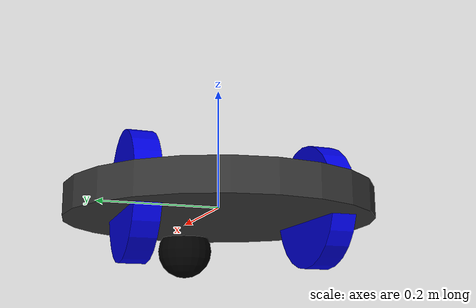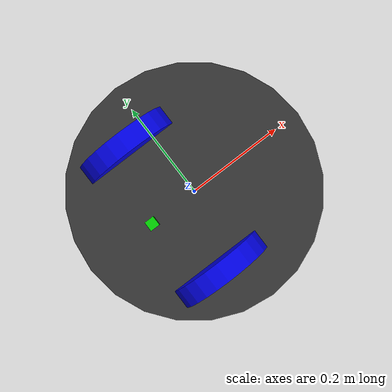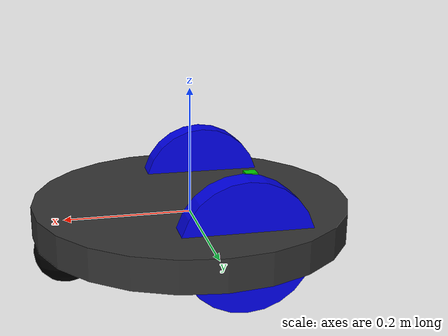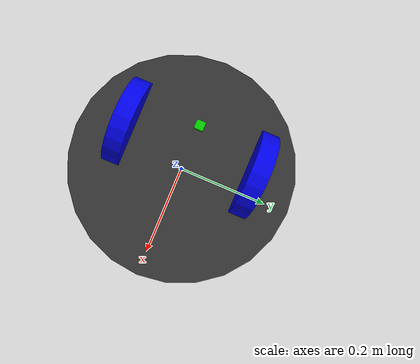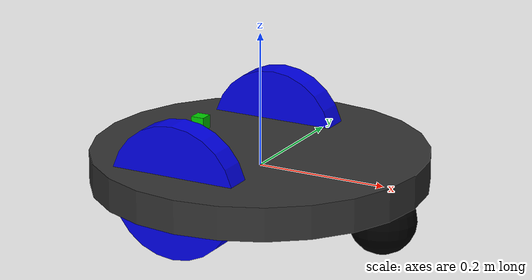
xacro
<?xml version="1.0" ?>
<robot name="nomad200" xmlns:xacro="http://www.ros.org/wiki/xacro">

<xacro:include filename="$(find nomad200_sim)/urdf/nomad200/robot.gazebo" />
<xacro:include filename="$(find nomad200_sim)/urdf/nomad200/materials.xacro" />
<xacro:include filename="$(find nomad200_sim)/urdf/nomad200/macros.xacro" />

  <link name="link_chassis">
    <!-- pose and inertial -->
    <pose>0 0 0.1 0 0 0</pose>
    <inertial>
      <mass value="5"/>
      <origin rpy="0 0 0" xyz="0 0 0.1"/>
      <inertia ixx="0.0395416666667" ixy="0" ixz="0" iyy="0.106208333333" iyz="0" izz="0.106208333333"/>
    </inertial>

    <!-- body -->
    <collision name="collision_chassis">
      <geometry>
        <cylinder radius="0.25" length="0.05"/>
      </geometry>
    </collision>
    <visual>
      <origin rpy="0 0 0" xyz="0 0 0"/>
      <geometry>
        <cylinder radius="0.25" length="0.05"/>
      </geometry>
      <material name="Nomad/Grey"/>
    </visual>

    <!-- caster front -->
    <collision name="caster_front_collision">
      <origin rpy=" 0 0 0" xyz="0.35 0 -0.05"/>
      <geometry>
        <sphere radius="0.05"/>
      </geometry>
      <surface>
        <friction>
          <ode>
            <mu>0</mu>
            <mu2>0</mu2>
            <slip1>1.0</slip1>
            <slip2>1.0</slip2>
          </ode>
        </friction>
      </surface>
    </collision>
    <visual name="caster_front_visual">
      <origin rpy=" 0 0 0" xyz="0.2 0 -0.05"/>
      <geometry>
        <sphere radius="0.05"/>
      </geometry>
      <material name="Nomad/Black"/>
    </visual>
  </link>

  <!-- right wheel -->
  <xacro:link_wheel name="link_right_wheel" />
  <xacro:joint_wheel name="joint_right_wheel" child="link_right_wheel" origin_xyz="-0.05 0.15 0" />

  <!-- left wheel -->
  <xacro:link_wheel name="link_left_wheel" />
  <xacro:joint_wheel name="joint_left_wheel" child="link_left_wheel" origin_xyz="-0.05 -0.15 0" />

  <!-- imu -->
  <xacro:link_imu name="link_sensor_imu" />
  <xacro:joint_imu name="joint_sensor_imu" child="link_sensor_imu" origin_xyz="-0.1 0 0.05" rpy="0 0 0" />

</robot>

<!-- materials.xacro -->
<robot>
  <material name="Nomad/Black">
    <color rgba="0.0 0.0 0.0 1.0"/>
  </material>
  <material name="Nomad/Blue">
    <color rgba="0.0 0.0 0.9 1.0"/>
  </material>
  <material name="Nomad/Green">
    <color rgba="0.0 0.8 0.0 1.0"/>
  </material>
  <material name="Nomad/Grey">
    <color rgba="0.2 0.2 0.2 1.0"/>
  </material>
  <material name="Nomad/Orange">
    <color rgba="1.0 0.423529411765 0.0392156862745 1.0"/>
  </material>
  <material name="Nomad/Brown">
    <color rgba="0.870588235294 0.811764705882 0.764705882353 1.0"/>
  </material>
  <material name="Nomad/Red">
    <color rgba="0.9 0.0 0.0 1.0"/>
  </material>
  <material name="Nomad/White">
    <color rgba="1.0 1.0 1.0 1.0"/>
  </material>
</robot>

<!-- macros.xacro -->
<robot xmlns:xacro="http://www.ros.org/wiki/xacro">
    <xacro:macro name="link_wheel" params="name">
      <link name="${name}">
          <inertial>
            <mass value="0.2"/>
            <origin rpy="0 1.5707 1.5707" xyz="0 0 0"/>
            <inertia ixx="0.000526666666667" ixy="0" ixz="0" iyy="0.000526666666667" iyz="0" izz="0.001"/>
           </inertial>
           <collision name="${name}_collision">
             <origin rpy="0 1.5707 1.5707" xyz="0 0 0"/>
             <geometry>
               <cylinder length="0.04" radius="0.1"/>
             </geometry>
           </collision>
           <visual name="${name}_visual">
             <origin rpy="0 1.5707 1.5707" xyz="0 0 0"/>
             <geometry>
               <cylinder length="0.04" radius="0.1"/>
             </geometry>
             <material name="Nomad/Blue"/>
           </visual>
      </link>
    </xacro:macro>

    <xacro:macro name="joint_wheel" params="name child origin_xyz">
      <joint name="${name}" type="continuous">
        <origin rpy="0 0 0" xyz="${origin_xyz}"/>
        <child link="${child}"/>
        <parent link="link_chassis"/>
        <axis rpy="0 0 0" xyz="0 1 0"/>
        <limit effort="10000" velocity="1000"/>
        <joint_properties damping="1.0" friction="1.0"/>
      </joint>
    </xacro:macro>

    <xacro:macro name="link_imu" params="name">
      <link name="${name}">
        <inertial>
          <mass value="0.001" />
          <origin xyz="0 0 0" rpy="0 0 0" />
          <inertia ixx="0.00000015" ixy="0" ixz="0" iyy="0.00000015" iyz="0" izz="0.00000015" />
        </inertial>
        <collision  name="${name}_collision">
          <origin xyz="0 0 0" rpy="0 0 0" />
          <geometry>
            <box size="0.02 0.02 0.02" />
          </geometry>
        </collision>
        <visual  name="${name}_visual">
          <origin xyz="0 0 0" rpy="0 0 0" />
          <geometry>
            <box size="0.02 0.02 0.02" />
          </geometry>
          <material name="Nomad/Green"/>
        </visual>
      </link>
    </xacro:macro>

    <xacro:macro name="joint_imu" params="name child origin_xyz rpy">
      <joint name="${name}" type="fixed">
        <origin xyz="${origin_xyz}" rpy="${rpy}" />
        <child link="${child}" />
        <parent link="link_chassis" />
        <axis xyz="0 0 1" />
      </joint>
    </xacro:macro>

</robot>
